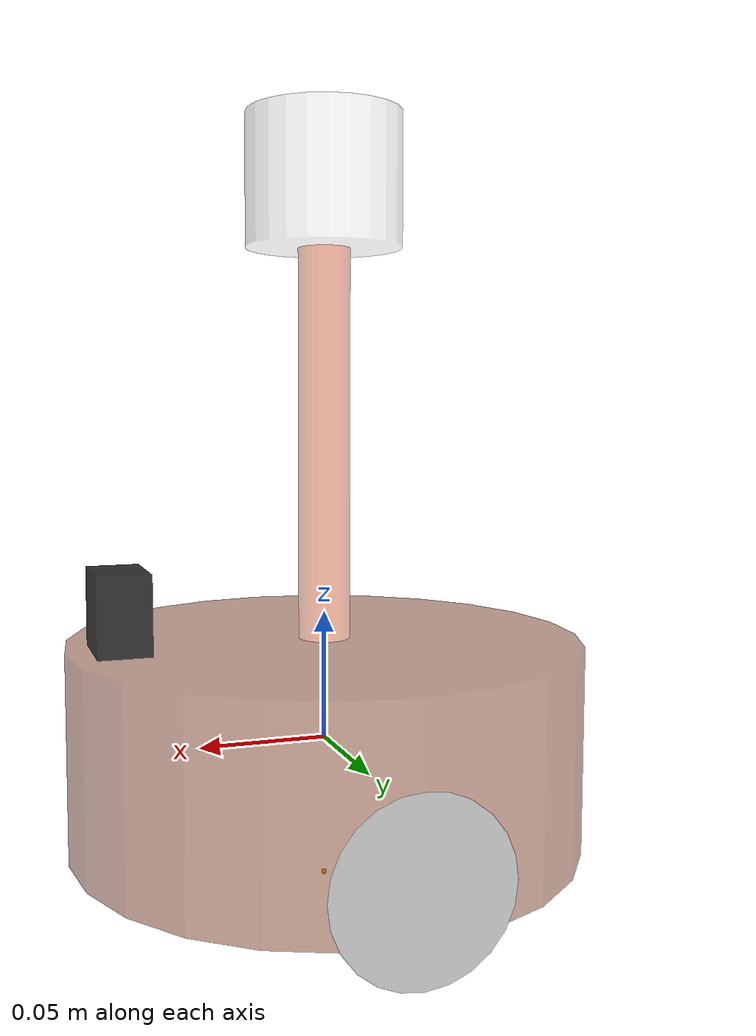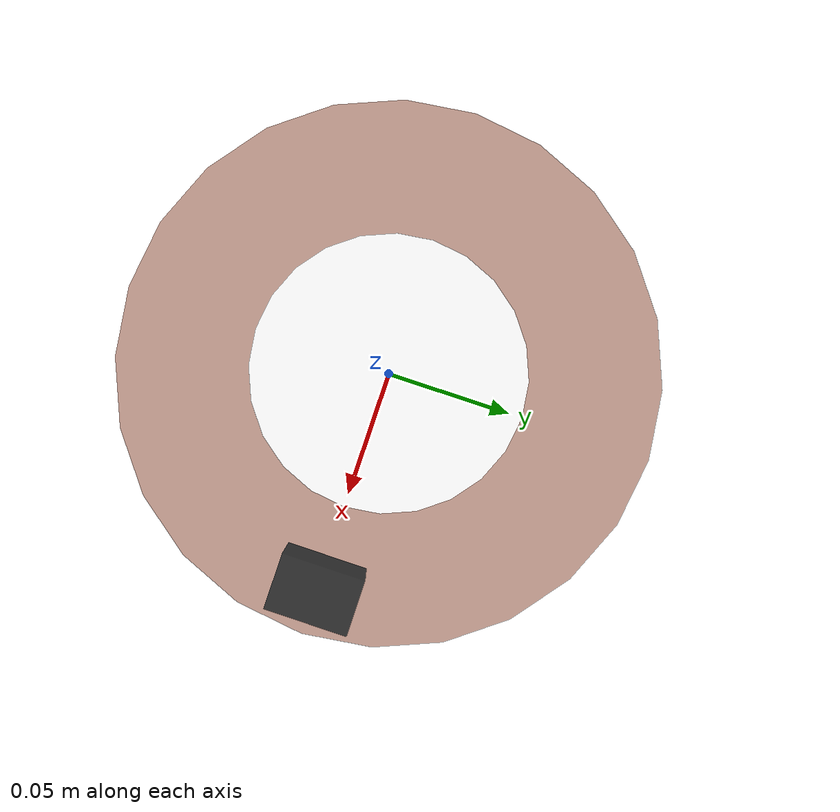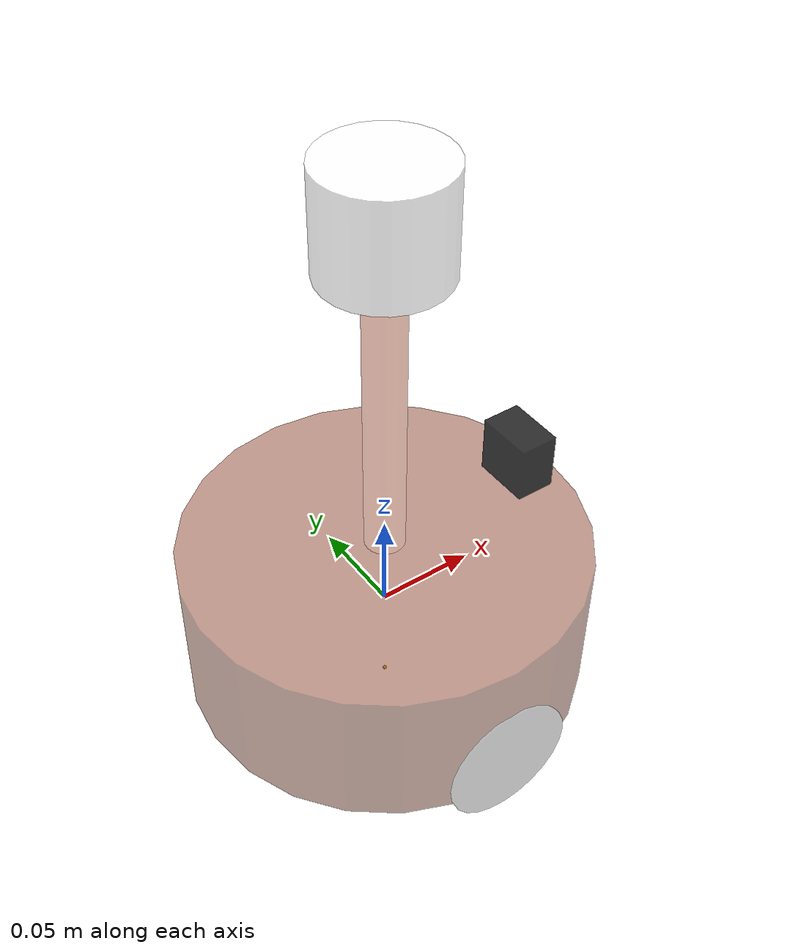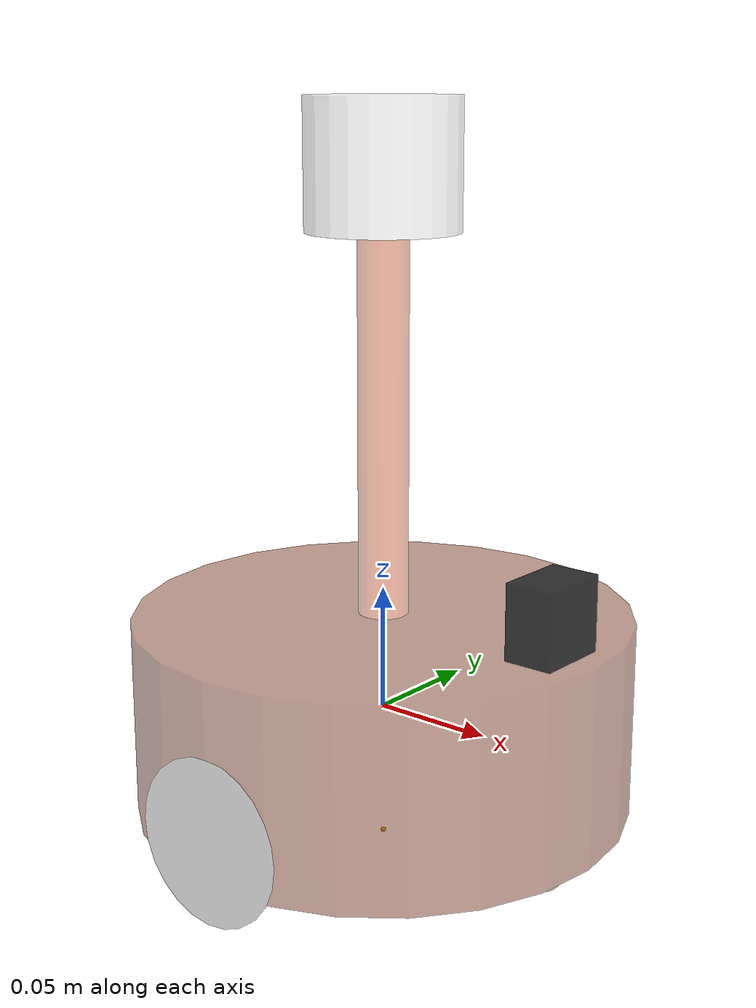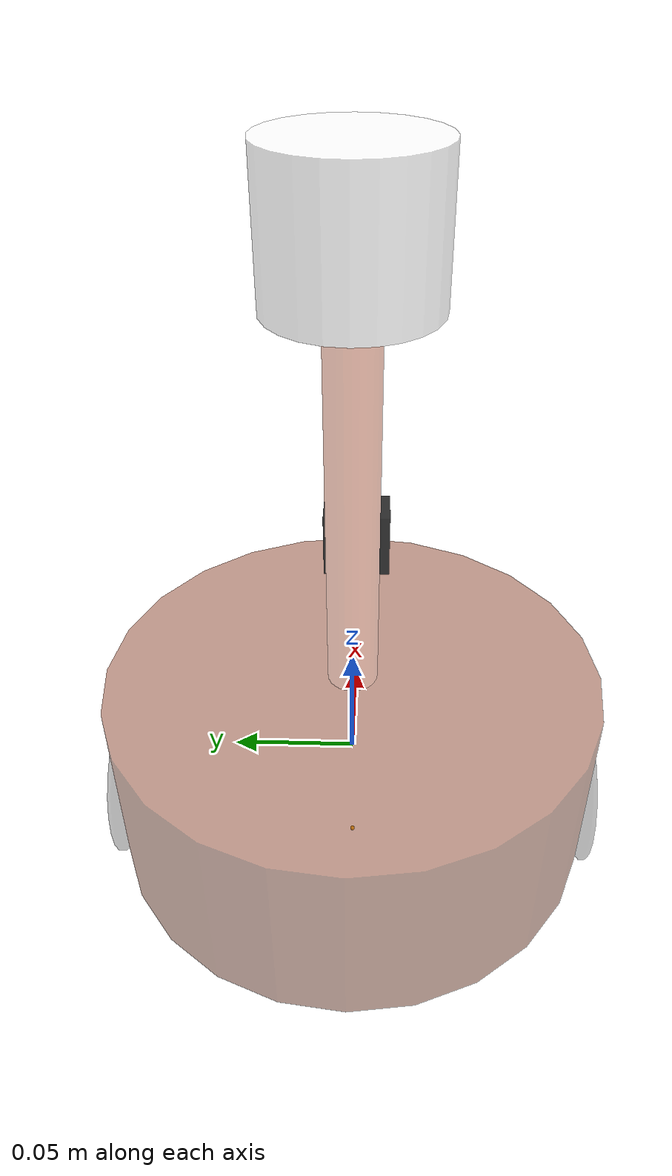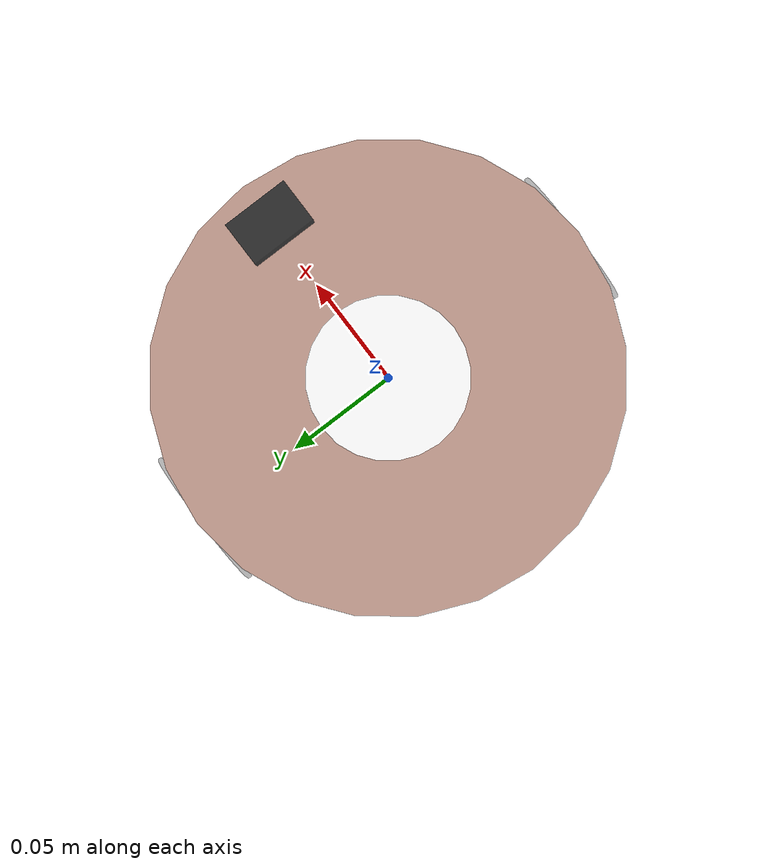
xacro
<!-- 集成小车各个部位 -->
<robot name="mycar" xmlns:xacro="http://wiki.ros.org/xacro">
    <!-- 包含惯性矩阵 -->
    <xacro:include filename="inertial_matrix.xacro" />
    <xacro:include filename="demo5_car_base.xacro" />
    <xacro:include filename="demo6_laser.xacro" />
    <xacro:include filename="demo7_car_camera.xacro" />
    <!-- 运动控制 -->
    <xacro:include filename="gazebo/move.xacro" />
    <!-- 雷达 -->
    <xacro:include filename="gazebo/laser.xacro" />
    <!-- 摄像头 -->
    <xacro:include filename="gazebo/camera.xacro" />
    <!-- kinect -->
    <xacro:include filename="gazebo/kinect.xacro" />

</robot>

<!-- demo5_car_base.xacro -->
<robot name="mycar" xmlns:xacro="http://wiki.ros.org/xacro">
    <!-- 属性封装 -->
    <xacro:property name="wheel_radius" value="0.0325" />
    <xacro:property name="wheel_length" value="0.0015" />
    <xacro:property name="PI" value="3.1415927" />
    <xacro:property name="base_link_length" value="0.08" />
    <xacro:property name="lidi_space" value="0.015" />
    <xacro:property name="base_link_radius" value="0.1" />
    <xacro:property name="base_mass" value="2" />
    <xacro:property name="wheel_mass" value="0.5" />

    <link name="base_footprint">
        <visual>
            <geometry>
                <sphere radius="0.001"/>
            </geometry>
        </visual>
    </link>

    <link name="base_link">
        <visual>
            <geometry>
                <cylinder radius="${base_link_radius}" length="${base_link_length}"/>
            </geometry>
            <origin xyz="0 0 0" rpy="0 0 0" />
            <material name="base_color" >
                <color rgba='0.5 0.2 0.1 0.5'/>
            </material>
        </visual>
        <collision>
            <geometry>
                <cylinder radius="${base_link_radius}" length="${base_link_length}"/>
            </geometry>
            <origin xyz="0 0 0" rpy="0 0 0" />
        </collision>
        <!-- 调用惯性矩阵函数 -->
        <xacro:cylinder_inertial_matrix m='${base_mass}' r='${base_link_radius}' h='${base_link_length}' />
    </link>
    <gazebo reference='base_link'>
        <material>Gazebo/Yellow</material>
    </gazebo>

    <joint name="link2footprint" type="fixed">
        <parent link='base_link'/>
        <child link='base_footprint'/>
        <origin xyz='0 0 -0.055' rpy='0 0 0' />
    </joint>

    <xacro:macro name="wheel_func" params="wheel_name flag" >
        <link name="${wheel_name}_wheel">
            <visual>
                <geometry>
                    <cylinder radius="${wheel_radius}" length="${wheel_length}" />
                </geometry>
                <origin xyz="0 0 0" rpy="${PI / 2} 0 0" />

                <material name="wheel_color">
                    <color rgba="0 0 0 0.3" />
                </material>
            </visual>
            <collision>
                <geometry>
                    <cylinder radius="${wheel_radius}" length="${wheel_length}" />
                </geometry>
                <origin xyz="0 0 0" rpy="${PI / 2} 0 0" />
            </collision>
            <xacro:cylinder_inertial_matrix m='${wheel_mass}' r='${wheel_radius}' h='${wheel_length}' />
        </link>
        <gazebo reference='${wheel_name}_wheel'>
            <material>Gazebo/Red</material>
        </gazebo>

        <!-- 3-2.joint -->
        <joint name="base_${wheel_name}_wheel_joint" type="continuous">
            <parent link="base_link"  />
            <child link="${wheel_name}_wheel" />
            <!--
                x 无偏移
                y 车体半径
                z z= 车体高度 / 2 + 离地间距 - 车轮半径

            -->
            <origin xyz="0 ${0.1 * flag} ${(base_link_length / 2 + lidi_space - wheel_radius) * -1}" rpy="0 0 0" />
            <axis xyz="0 1 0" />
        </joint>
    </xacro:macro>

    <!-- 从动轮 -->
    <xacro:property name="small_wheel_radius" value="0.0075" />
    <xacro:property name="small_wheel_mass" value="0.25" />
    <xacro:property name="small_joint_z" value="${(base_link_length / 2 +lidi_space - small_wheel_radius) * -1}" />

    <xacro:macro name="small_wheel_func" params="small_wheel_name flag" >
        <link name="${small_wheel_name}_wheel">
            <visual>
                <geometry>
                    <sphere radius="${small_wheel_radius}"/>
                </geometry>

                <origin xyz="0 0 0" rpy="0 0 0" />

                <material name="wheel_color" >
                    <color rgba='0 0 0 0.3'/>
                </material>
            </visual>
            <collision>
                <geometry>
                    <sphere radius="${small_wheel_radius}"/>
                </geometry>

                <origin xyz="0 0 0" rpy="0 0 0" />
            </collision>
            <xacro:sphere_inertial_matrix m='${small_wheel_mass}' r='${small_wheel_radius}' />
        </link>
        <gazebo reference="${small_wheel_name}_wheel">
            <material>Gazebo/Red</material>
        </gazebo>

        <joint name="${small_wheel_name}2link" type='continuous' >
            <parent link='base_link'/>
            <child link='${small_wheel_name}_wheel'/>
            <origin xyz='${0.08 * flag} 0 ${small_joint_z}' rpy='0 0 0' />
            <!-- 关节旋转参考轴 万向轮不设置旋转轴还报错,服了-->
            <axis xyz='0 1 0'/>
        </joint>

    </xacro:macro >

    <xacro:wheel_func wheel_name="l" flag="1" />
    <xacro:wheel_func wheel_name="r" flag="-1" />
    <xacro:small_wheel_func small_wheel_name="front" flag="1" />
    <xacro:small_wheel_func small_wheel_name="back" flag="-1" />
</robot>

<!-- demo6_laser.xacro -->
<robot name="mycar" xmlns:xacro="http://wiki.ros.org/xacro">
    <!-- 雷达支架 -->
    <xacro:property name="support_length" value="0.15" /> <!-- 支架长度 -->
    <xacro:property name="support_radius" value="0.01" /> <!-- 支架半径 -->
    <xacro:property name="support_mass" value="0.5" /> <!-- 支架质量 -->
    <xacro:property name="support_x" value="0.0" /> <!-- 支架安装的x坐标 -->
    <xacro:property name="support_y" value="0.0" /> <!-- 支架安装的y坐标 -->
    <xacro:property name="support_z" value="${base_link_length / 2 + support_length / 2}" /> <!-- 支架安装的z坐标:底盘高度 / 2 + 支架高度 / 2  -->

    <link name="support">
        <visual>
            <geometry>
                <cylinder radius="${support_radius}" length="${support_length}" />
            </geometry>
            <origin xyz="0.0 0.0 0.0" rpy="0.0 0.0 0.0" />
            <material name="red">
                <color rgba="0.8 0.2 0.0 0.4" />
            </material>
        </visual>
        <collision>
            <geometry>
                <cylinder radius="${support_radius}" length="${support_length}" />
            </geometry>
            <origin xyz="0.0 0.0 0.0" rpy="0.0 0.0 0.0" />
        </collision>
        <xacro:cylinder_inertial_matrix m='${support_mass}' r='${support_radius}' h='${support_length}'/>
    </link>
    <gazebo reference='support'>
        <material>Gazebo/Blue</material>
    </gazebo>

    <joint name="support2base_link" type="fixed">
        <parent link="base_link" />
        <child link="support" />
        <origin xyz="${support_x} ${support_y} ${support_z}" />
    </joint>

    <!-- 雷达属性 -->
    <xacro:property name="laser_length" value="0.05" /> <!-- 雷达长度 -->
    <xacro:property name="laser_radius" value="0.03" /> <!-- 雷达半径 -->
    <xacro:property name="laser_mass" value="0.1" /> <!-- 雷达半径 -->
    <xacro:property name="laser_x" value="0.0" /> <!-- 雷达安装的x坐标 -->
    <xacro:property name="laser_y" value="0.0" /> <!-- 雷达安装的y坐标 -->
    <xacro:property name="laser_z" value="${support_length / 2 + laser_length / 2}" /> <!-- 雷达安装的z坐标:支架高度 / 2 + 雷达高度 / 2  -->

    <!-- 雷达关节以及link -->
    <link name="laser">
        <visual>
            <geometry>
                <cylinder radius="${laser_radius}" length="${laser_length}" />
            </geometry>
            <origin xyz="0.0 0.0 0.0" rpy="0.0 0.0 0.0" />
            <material name="black" >
                <color rgba="1 1 1 0.5" />
            </material>
        </visual>
        <collision>
            <geometry>
                <cylinder radius="${laser_radius}" length="${laser_length}" />
            </geometry>
            <origin xyz="0.0 0.0 0.0" rpy="0.0 0.0 0.0" />
        </collision>
        <xacro:cylinder_inertial_matrix m='${laser_mass}' r='${laser_radius}' h='${laser_length}' />
    </link>
    <gazebo reference="laser">
        <material>Gazebo/Black</material>
    </gazebo>

    <joint name="laser2support" type="fixed">
        <parent link="support" />
        <child link="laser" />
        <origin xyz="${laser_x} ${laser_y} ${laser_z}" />
    </joint>
</robot>

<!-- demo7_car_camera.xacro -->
<robot name="mycar" xmlns:xacro="http://wiki.ros.org/xacro">
    <xacro:property name="camera_length" value="0.02" />
    <xacro:property name="camera_width" value="0.03" />
    <xacro:property name="camera_height" value="0.03" />
    <xacro:property name="camera_mass" value="0.1" />
    <xacro:property name="joint_camera_x" value="0.08" />
    <xacro:property name="joint_camera_y" value="0"/>
    <xacro:property name="joint_camera_z" value="${base_link_length / 2 +camera_height / 2}"/>

    <link name="camera">
        <visual>
            <geometry>
                <box size="${camera_length} ${camera_width} ${camera_height}" />
            </geometry>

            <material name="black">
                <color rgba="0 0 0 0.8"/>
            </material>
        </visual>
        <collision>
            <geometry>
                <box size="${camera_length} ${camera_width} ${camera_height}" />
            </geometry>
        </collision>
        <xacro:box_inertial_matrix m='${camera_mass}' l='${camera_length}' w='${camera_width}' h='${camera_height}'/>
    </link>
    <gazebo reference='camera'>
        <material>Gazebo/Green</material>
    </gazebo>

    <joint name="camera2base" type="fixed">
        <parent link="base_link" />
        <child link="camera"/>
        <origin xyz="${joint_camera_x}  ${joint_camera_y} ${joint_camera_z}" rpy="0 0 0"/>
    </joint>
</robot>
